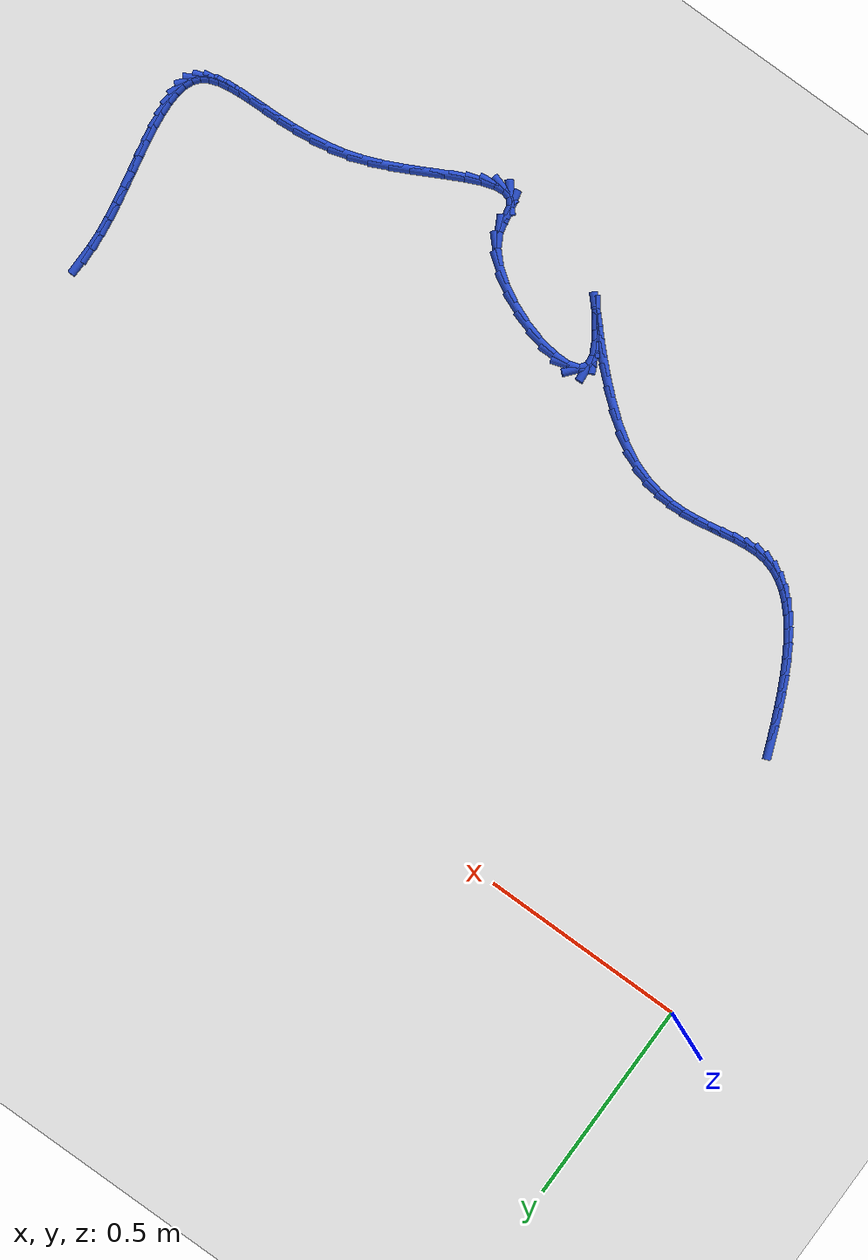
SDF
<sdf version="1.6">
 <world name="default">
  <model name="ground_plane">
   <static>1</static>
   <link name="link">
    <collision name="collision">
     <geometry><plane><normal>0 0 1</normal><size>100 100</size></plane></geometry>
     <surface><friction><ode><mu>100</mu><mu2>50</mu2></ode></friction></surface>
    </collision>
    <visual name="visual">
     <cast_shadows>0</cast_shadows>
     <geometry><plane><normal>0 0 1</normal><size>100 100</size></plane></geometry>
     <material>
      <script><uri>file://media/materials/scripts/gazebo.material</uri><name>Gazebo/WhiteGlow</name></script>
     </material>
    </visual>
   </link>
  </model>
  <model name="line">
   <link name="link_154">
    <pose>2.082928090604853 -0.6021413350175272 0.01 0 1.57 1.5504286555542877</pose>
    <collision name="collision">
     <geometry><cylinder><radius>0.01</radius><length>0.08</length></cylinder></geometry>
    </collision>
    <visual name="visual">
     <material>
      <script><name>Gazebo/Blue</name><uri>file://media/materials/scripts/gazebo.material</uri></script>
     </material>
     <geometry><cylinder><radius>0.01</radius><length>0.08</length></cylinder></geometry>
    </visual>
   </link>
   <link name="link_155">
    <pose>2.0822138356286595 -0.6372045583661057 0.01 0 1.57 -1.516428420142381</pose>
    <collision name="collision">
     <geometry><cylinder><radius>0.01</radius><length>0.08</length></cylinder></geometry>
    </collision>
    <visual name="visual">
     <material>
      <script><name>Gazebo/Blue</name><uri>file://media/materials/scripts/gazebo.material</uri></script>
     </material>
     <geometry><cylinder><radius>0.01</radius><length>0.08</length></cylinder></geometry>
    </visual>
   </link>
   <link name="link_156">
    <pose>2.084219078705596 -0.6740510559667606 0.01 0 1.57 -1.461875645643256</pose>
    <collision name="collision">
     <geometry><cylinder><radius>0.01</radius><length>0.08</length></cylinder></geometry>
    </collision>
    <visual name="visual">
     <material>
      <script><name>Gazebo/Blue</name><uri>file://media/materials/scripts/gazebo.material</uri></script>
     </material>
     <geometry><cylinder><radius>0.01</radius><length>0.08</length></cylinder></geometry>
    </visual>
   </link>
   <link name="link_157">
    <pose>2.0883899429834174 -0.7121921802456141 0.01 0 1.57 -1.423399725698962</pose>
    <collision name="collision">
     <geometry><cylinder><radius>0.01</radius><length>0.08</length></cylinder></geometry>
    </collision>
    <visual name="visual">
     <material>
      <script><name>Gazebo/Blue</name><uri>file://media/materials/scripts/gazebo.material</uri></script>
     </material>
     <geometry><cylinder><radius>0.01</radius><length>0.08</length></cylinder></geometry>
    </visual>
   </link>
   <link name="link_158">
    <pose>2.094172551609881 -0.7511392836287923 0.01 0 1.57 -1.3983118769853247</pose>
    <collision name="collision">
     <geometry><cylinder><radius>0.01</radius><length>0.08</length></cylinder></geometry>
    </collision>
    <visual name="visual">
     <material>
      <script><name>Gazebo/Blue</name><uri>file://media/materials/scripts/gazebo.material</uri></script>
     </material>
     <geometry><cylinder><radius>0.01</radius><length>0.08</length></cylinder></geometry>
    </visual>
   </link>
   <link name="link_159">
    <pose>2.1010130277327432 -0.7904037185424192 0.01 0 1.57 -1.385089916106103</pose>
    <collision name="collision">
     <geometry><cylinder><radius>0.01</radius><length>0.08</length></cylinder></geometry>
    </collision>
    <visual name="visual">
     <material>
      <script><name>Gazebo/Blue</name><uri>file://media/materials/scripts/gazebo.material</uri></script>
     </material>
     <geometry><cylinder><radius>0.01</radius><length>0.08</length></cylinder></geometry>
    </visual>
   </link>
   <link name="link_160">
    <pose>2.108357494499759 -0.8294968374126194 0.01 0 1.57 -1.3832282303199088</pose>
    <collision name="collision">
     <geometry><cylinder><radius>0.01</radius><length>0.08</length></cylinder></geometry>
    </collision>
    <visual name="visual">
     <material>
      <script><name>Gazebo/Blue</name><uri>file://media/materials/scripts/gazebo.material</uri></script>
     </material>
     <geometry><cylinder><radius>0.01</radius><length>0.08</length></cylinder></geometry>
    </visual>
   </link>
   <link name="link_161">
    <pose>2.1156520750586862 -0.8679299926655174 0.01 0 1.57 -1.3932334228141947</pose>
    <collision name="collision">
     <geometry><cylinder><radius>0.01</radius><length>0.08</length></cylinder></geometry>
    </collision>
    <visual name="visual">
     <material>
      <script><name>Gazebo/Blue</name><uri>file://media/materials/scripts/gazebo.material</uri></script>
     </material>
     <geometry><cylinder><radius>0.01</radius><length>0.08</length></cylinder></geometry>
    </visual>
   </link>
   <link name="link_162">
    <pose>2.12234289255728 -0.9052145367272377 0.01 0 1.57 -1.4168050320053365</pose>
    <collision name="collision">
     <geometry><cylinder><radius>0.01</radius><length>0.08</length></cylinder></geometry>
    </collision>
    <visual name="visual">
     <material>
      <script><name>Gazebo/Blue</name><uri>file://media/materials/scripts/gazebo.material</uri></script>
     </material>
     <geometry><cylinder><radius>0.01</radius><length>0.08</length></cylinder></geometry>
    </visual>
   </link>
   <link name="link_163">
    <pose>2.1278760701432966 -0.9408618220239048 0.01 0 1.57 -1.4572797739764503</pose>
    <collision name="collision">
     <geometry><cylinder><radius>0.01</radius><length>0.08</length></cylinder></geometry>
    </collision>
    <visual name="visual">
     <material>
      <script><name>Gazebo/Blue</name><uri>file://media/materials/scripts/gazebo.material</uri></script>
     </material>
     <geometry><cylinder><radius>0.01</radius><length>0.08</length></cylinder></geometry>
    </visual>
   </link>
   <link name="link_164">
    <pose>2.131697730964493 -0.9743832009816433 0.01 0 1.57 -1.5204853062887407</pose>
    <collision name="collision">
     <geometry><cylinder><radius>0.01</radius><length>0.08</length></cylinder></geometry>
    </collision>
    <visual name="visual">
     <material>
      <script><name>Gazebo/Blue</name><uri>file://media/materials/scripts/gazebo.material</uri></script>
     </material>
     <geometry><cylinder><radius>0.01</radius><length>0.08</length></cylinder></geometry>
    </visual>
   </link>
   <link name="link_165">
    <pose>2.133253998168624 -1.0052900260265785 0.01 0 1.57 1.525401682552012</pose>
    <collision name="collision">
     <geometry><cylinder><radius>0.01</radius><length>0.08</length></cylinder></geometry>
    </collision>
    <visual name="visual">
     <material>
      <script><name>Gazebo/Blue</name><uri>file://media/materials/scripts/gazebo.material</uri></script>
     </material>
     <geometry><cylinder><radius>0.01</radius><length>0.08</length></cylinder></geometry>
    </visual>
   </link>
   <link name="link_166">
    <pose>2.1319909949034472 -1.0330936495848329 0.01 0 1.57 1.3816031477288833</pose>
    <collision name="collision">
     <geometry><cylinder><radius>0.01</radius><length>0.08</length></cylinder></geometry>
    </collision>
    <visual name="visual">
     <material>
      <script><name>Gazebo/Blue</name><uri>file://media/materials/scripts/gazebo.material</uri></script>
     </material>
     <geometry><cylinder><radius>0.01</radius><length>0.08</length></cylinder></geometry>
    </visual>
   </link>
   <link name="link_167">
    <pose>2.1273548443167183 -1.057305424082532 0.01 0 1.57 1.168615141969096</pose>
    <collision name="collision">
     <geometry><cylinder><radius>0.01</radius><length>0.08</length></cylinder></geometry>
    </collision>
    <visual name="visual">
     <material>
      <script><name>Gazebo/Blue</name><uri>file://media/materials/scripts/gazebo.material</uri></script>
     </material>
     <geometry><cylinder><radius>0.01</radius><length>0.08</length></cylinder></geometry>
    </visual>
   </link>
   <link name="link_168">
    <pose>2.118791669556193 -1.0774367019458002 0.01 0 1.57 0.8751241545529416</pose>
    <collision name="collision">
     <geometry><cylinder><radius>0.01</radius><length>0.08</length></cylinder></geometry>
    </collision>
    <visual name="visual">
     <material>
      <script><name>Gazebo/Blue</name><uri>file://media/materials/scripts/gazebo.material</uri></script>
     </material>
     <geometry><cylinder><radius>0.01</radius><length>0.08</length></cylinder></geometry>
    </visual>
   </link>
   <link name="link_169">
    <pose>2.1057711824734993 -1.0930316497828898 0.01 0 1.57 0.5695023985253662</pose>
    <collision name="collision">
     <geometry><cylinder><radius>0.01</radius><length>0.08</length></cylinder></geometry>
    </collision>
    <visual name="visual">
     <material>
      <script><name>Gazebo/Blue</name><uri>file://media/materials/scripts/gazebo.material</uri></script>
     </material>
     <geometry><cylinder><radius>0.01</radius><length>0.08</length></cylinder></geometry>
    </visual>
   </link>
   <link name="link_170">
    <pose>2.088219534564062 -1.1042693861555073 0.01 0 1.57 0.3376662476113172</pose>
    <collision name="collision">
     <geometry><cylinder><radius>0.01</radius><length>0.08</length></cylinder></geometry>
    </collision>
    <visual name="visual">
     <material>
      <script><name>Gazebo/Blue</name><uri>file://media/materials/scripts/gazebo.material</uri></script>
     </material>
     <geometry><cylinder><radius>0.01</radius><length>0.08</length></cylinder></geometry>
    </visual>
   </link>
   <link name="link_171">
    <pose>2.0664760609011297 -1.1119038081824713 0.01 0 1.57 0.18569910430754963</pose>
    <collision name="collision">
     <geometry><cylinder><radius>0.01</radius><length>0.08</length></cylinder></geometry>
    </collision>
    <visual name="visual">
     <material>
      <script><name>Gazebo/Blue</name><uri>file://media/materials/scripts/gazebo.material</uri></script>
     </material>
     <geometry><cylinder><radius>0.01</radius><length>0.08</length></cylinder></geometry>
    </visual>
   </link>
   <link name="link_172">
    <pose>2.04089500715565 -1.1167095550747197 0.01 0 1.57 0.09439500773398966</pose>
    <collision name="collision">
     <geometry><cylinder><radius>0.01</radius><length>0.08</length></cylinder></geometry>
    </collision>
    <visual name="visual">
     <material>
      <script><name>Gazebo/Blue</name><uri>file://media/materials/scripts/gazebo.material</uri></script>
     </material>
     <geometry><cylinder><radius>0.01</radius><length>0.08</length></cylinder></geometry>
    </visual>
   </link>
   <link name="link_173">
    <pose>2.0118306189985766 -1.1194612660431915 0.01 0 1.57 0.04570146556740868</pose>
    <collision name="collision">
     <geometry><cylinder><radius>0.01</radius><length>0.08</length></cylinder></geometry>
    </collision>
    <visual name="visual">
     <material>
      <script><name>Gazebo/Blue</name><uri>file://media/materials/scripts/gazebo.material</uri></script>
     </material>
     <geometry><cylinder><radius>0.01</radius><length>0.08</length></cylinder></geometry>
    </visual>
   </link>
   <link name="link_174">
    <pose>1.9796371421008576 -1.1209335802988252 0.01 0 1.57 0.027662465531599463</pose>
    <collision name="collision">
     <geometry><cylinder><radius>0.01</radius><length>0.08</length></cylinder></geometry>
    </collision>
    <visual name="visual">
     <material>
      <script><name>Gazebo/Blue</name><uri>file://media/materials/scripts/gazebo.material</uri></script>
     </material>
     <geometry><cylinder><radius>0.01</radius><length>0.08</length></cylinder></geometry>
    </visual>
   </link>
   <link name="link_175">
    <pose>1.944668822133443 -1.1219011370525587 0.01 0 1.57 0.03308432092568549</pose>
    <collision name="collision">
     <geometry><cylinder><radius>0.01</radius><length>0.08</length></cylinder></geometry>
    </collision>
    <visual name="visual">
     <material>
      <script><name>Gazebo/Blue</name><uri>file://media/materials/scripts/gazebo.material</uri></script>
     </material>
     <geometry><cylinder><radius>0.01</radius><length>0.08</length></cylinder></geometry>
    </visual>
   </link>
   <link name="link_176">
    <pose>1.9072799047672848 -1.1231385755153316 0.01 0 1.57 0.05777225927781681</pose>
    <collision name="collision">
     <geometry><cylinder><radius>0.01</radius><length>0.08</length></cylinder></geometry>
    </collision>
    <visual name="visual">
     <material>
      <script><name>Gazebo/Blue</name><uri>file://media/materials/scripts/gazebo.material</uri></script>
     </material>
     <geometry><cylinder><radius>0.01</radius><length>0.08</length></cylinder></geometry>
    </visual>
   </link>
   <link name="link_177">
    <pose>1.8678246356733315 -1.1254205348980815 0.01 0 1.57 0.09929301649754561</pose>
    <collision name="collision">
     <geometry><cylinder><radius>0.01</radius><length>0.08</length></cylinder></geometry>
    </collision>
    <visual name="visual">
     <material>
      <script><name>Gazebo/Blue</name><uri>file://media/materials/scripts/gazebo.material</uri></script>
     </material>
     <geometry><cylinder><radius>0.01</radius><length>0.08</length></cylinder></geometry>
    </visual>
   </link>
   <link name="link_178">
    <pose>1.8266572605225333 -1.129521654411747 0.01 0 1.57 0.15615233657700472</pose>
    <collision name="collision">
     <geometry><cylinder><radius>0.01</radius><length>0.08</length></cylinder></geometry>
    </collision>
    <visual name="visual">
     <material>
      <script><name>Gazebo/Blue</name><uri>file://media/materials/scripts/gazebo.material</uri></script>
     </material>
     <geometry><cylinder><radius>0.01</radius><length>0.08</length></cylinder></geometry>
    </visual>
   </link>
   <link name="link_179">
    <pose>1.7841320249858417 -1.1362165732672669 0.01 0 1.57 0.227196615899241</pose>
    <collision name="collision">
     <geometry><cylinder><radius>0.01</radius><length>0.08</length></cylinder></geometry>
    </collision>
    <visual name="visual">
     <material>
      <script><name>Gazebo/Blue</name><uri>file://media/materials/scripts/gazebo.material</uri></script>
     </material>
     <geometry><cylinder><radius>0.01</radius><length>0.08</length></cylinder></geometry>
    </visual>
   </link>
   <link name="link_180">
    <pose>1.7406031747342063 -1.14627993067558 0.01 0 1.57 0.3109002592883623</pose>
    <collision name="collision">
     <geometry><cylinder><radius>0.01</radius><length>0.08</length></cylinder></geometry>
    </collision>
    <visual name="visual">
     <material>
      <script><name>Gazebo/Blue</name><uri>file://media/materials/scripts/gazebo.material</uri></script>
     </material>
     <geometry><cylinder><radius>0.01</radius><length>0.08</length></cylinder></geometry>
    </visual>
   </link>
   <link name="link_181">
    <pose>1.6964268444507111 -1.1604746879553467 0.01 0 1.57 0.3905158080435753</pose>
    <collision name="collision">
     <geometry><cylinder><radius>0.01</radius><length>0.08</length></cylinder></geometry>
    </collision>
    <visual name="visual">
     <material>
      <script><name>Gazebo/Blue</name><uri>file://media/materials/scripts/gazebo.material</uri></script>
     </material>
     <geometry><cylinder><radius>0.01</radius><length>0.08</length></cylinder></geometry>
    </visual>
   </link>
   <link name="link_182">
    <pose>1.652094974016625 -1.1787242573057144 0.01 0 1.57 0.44435136987360924</pose>
    <collision name="collision">
     <geometry><cylinder><radius>0.01</radius><length>0.08</length></cylinder></geometry>
    </collision>
    <visual name="visual">
     <material>
      <script><name>Gazebo/Blue</name><uri>file://media/materials/scripts/gazebo.material</uri></script>
     </material>
     <geometry><cylinder><radius>0.01</radius><length>0.08</length></cylinder></geometry>
    </visual>
   </link>
   <link name="link_183">
    <pose>1.6083240481078698 -1.1995639127163011 0.01 0 1.57 0.47485948924599763</pose>
    <collision name="collision">
     <geometry><cylinder><radius>0.01</radius><length>0.08</length></cylinder></geometry>
    </collision>
    <visual name="visual">
     <material>
      <script><name>Gazebo/Blue</name><uri>file://media/materials/scripts/gazebo.material</uri></script>
     </material>
     <geometry><cylinder><radius>0.01</radius><length>0.08</length></cylinder></geometry>
    </visual>
   </link>
   <link name="link_184">
    <pose>1.5658516075515447 -1.2213987588355144 0.01 0 1.57 0.48356377862109406</pose>
    <collision name="collision">
     <geometry><cylinder><radius>0.01</radius><length>0.08</length></cylinder></geometry>
    </collision>
    <visual name="visual">
     <material>
      <script><name>Gazebo/Blue</name><uri>file://media/materials/scripts/gazebo.material</uri></script>
     </material>
     <geometry><cylinder><radius>0.01</radius><length>0.08</length></cylinder></geometry>
    </visual>
   </link>
   <link name="link_185">
    <pose>1.5254151931747495 -1.2426339003117621 0.01 0 1.57 0.4680796269715781</pose>
    <collision name="collision">
     <geometry><cylinder><radius>0.01</radius><length>0.08</length></cylinder></geometry>
    </collision>
    <visual name="visual">
     <material>
      <script><name>Gazebo/Blue</name><uri>file://media/materials/scripts/gazebo.material</uri></script>
     </material>
     <geometry><cylinder><radius>0.01</radius><length>0.08</length></cylinder></geometry>
    </visual>
   </link>
   <link name="link_186">
    <pose>1.4877523458045823 -1.2616744417934511 0.01 0 1.57 0.4199955288477288</pose>
    <collision name="collision">
     <geometry><cylinder><radius>0.01</radius><length>0.08</length></cylinder></geometry>
    </collision>
    <visual name="visual">
     <material>
      <script><name>Gazebo/Blue</name><uri>file://media/materials/scripts/gazebo.material</uri></script>
     </material>
     <geometry><cylinder><radius>0.01</radius><length>0.08</length></cylinder></geometry>
    </visual>
   </link>
   <link name="link_187">
    <pose>1.4536006062681432 -1.276925487928989 0.01 0 1.57 0.3187064087704359</pose>
    <collision name="collision">
     <geometry><cylinder><radius>0.01</radius><length>0.08</length></cylinder></geometry>
    </collision>
    <visual name="visual">
     <material>
      <script><name>Gazebo/Blue</name><uri>file://media/materials/scripts/gazebo.material</uri></script>
     </material>
     <geometry><cylinder><radius>0.01</radius><length>0.08</length></cylinder></geometry>
    </visual>
   </link>
   <link name="link_188">
    <pose>1.4236975153925309 -1.286792143366784 0.01 0 1.57 0.11536540839708309</pose>
    <collision name="collision">
     <geometry><cylinder><radius>0.01</radius><length>0.08</length></cylinder></geometry>
    </collision>
    <visual name="visual">
     <material>
      <script><name>Gazebo/Blue</name><uri>file://media/materials/scripts/gazebo.material</uri></script>
     </material>
     <geometry><cylinder><radius>0.01</radius><length>0.08</length></cylinder></geometry>
    </visual>
   </link>
   <link name="link_189">
    <pose>1.398780614004846 -1.289679512755243 0.01 0 1.57 -0.2880528850164278</pose>
    <collision name="collision">
     <geometry><cylinder><radius>0.01</radius><length>0.08</length></cylinder></geometry>
    </collision>
    <visual name="visual">
     <material>
      <script><name>Gazebo/Blue</name><uri>file://media/materials/scripts/gazebo.material</uri></script>
     </material>
     <geometry><cylinder><radius>0.01</radius><length>0.08</length></cylinder></geometry>
    </visual>
   </link>
   <link name="link_190">
    <pose>1.3795874429321864 -1.2839927007427732 0.01 0 1.57 -0.8942433141331325</pose>
    <collision name="collision">
     <geometry><cylinder><radius>0.01</radius><length>0.08</length></cylinder></geometry>
    </collision>
    <visual name="visual">
     <material>
      <script><name>Gazebo/Blue</name><uri>file://media/materials/scripts/gazebo.material</uri></script>
     </material>
     <geometry><cylinder><radius>0.01</radius><length>0.08</length></cylinder></geometry>
    </visual>
   </link>
   <link name="link_191">
    <pose>1.3668555430016525 -1.2681368119777827 0.01 0 1.57 -1.3584825285052593</pose>
    <collision name="collision">
     <geometry><cylinder><radius>0.01</radius><length>0.08</length></cylinder></geometry>
    </collision>
    <visual name="visual">
     <material>
      <script><name>Gazebo/Blue</name><uri>file://media/materials/scripts/gazebo.material</uri></script>
     </material>
     <geometry><cylinder><radius>0.01</radius><length>0.08</length></cylinder></geometry>
    </visual>
   </link>
   <link name="link_192">
    <pose>1.3609588044032312 -1.2407816965226794 0.01 0 1.57 -1.3870834307999464</pose>
    <collision name="collision">
     <geometry><cylinder><radius>0.01</radius><length>0.08</length></cylinder></geometry>
    </collision>
    <visual name="visual">
     <material>
      <script><name>Gazebo/Blue</name><uri>file://media/materials/scripts/gazebo.material</uri></script>
     </material>
     <geometry><cylinder><radius>0.01</radius><length>0.08</length></cylinder></geometry>
    </visual>
   </link>
   <link name="link_193">
    <pose>1.354538252835942 -1.2062269290800545 0.01 0 1.57 -1.0735182442326028</pose>
    <collision name="collision">
     <geometry><cylinder><radius>0.01</radius><length>0.08</length></cylinder></geometry>
    </collision>
    <visual name="visual">
     <material>
      <script><name>Gazebo/Blue</name><uri>file://media/materials/scripts/gazebo.material</uri></script>
     </material>
     <geometry><cylinder><radius>0.01</radius><length>0.08</length></cylinder></geometry>
    </visual>
   </link>
   <link name="link_194">
    <pose>1.336201361120068 -1.172443236795673 0.01 0 1.57 -0.8025758413850526</pose>
    <collision name="collision">
     <geometry><cylinder><radius>0.01</radius><length>0.08</length></cylinder></geometry>
    </collision>
    <visual name="visual">
     <material>
      <script><name>Gazebo/Blue</name><uri>file://media/materials/scripts/gazebo.material</uri></script>
     </material>
     <geometry><cylinder><radius>0.01</radius><length>0.08</length></cylinder></geometry>
    </visual>
   </link>
   <link name="link_195">
    <pose>1.3062895606748204 -1.1414857403143759 0.01 0 1.57 -0.6198478195379366</pose>
    <collision name="collision">
     <geometry><cylinder><radius>0.01</radius><length>0.08</length></cylinder></geometry>
    </collision>
    <visual name="visual">
     <material>
      <script><name>Gazebo/Blue</name><uri>file://media/materials/scripts/gazebo.material</uri></script>
     </material>
     <geometry><cylinder><radius>0.01</radius><length>0.08</length></cylinder></geometry>
    </visual>
   </link>
   <link name="link_196">
    <pose>1.2678322888826707 -1.1140395818889357 0.01 0 1.57 -0.48636074165551135</pose>
    <collision name="collision">
     <geometry><cylinder><radius>0.01</radius><length>0.08</length></cylinder></geometry>
    </collision>
    <visual name="visual">
     <material>
      <script><name>Gazebo/Blue</name><uri>file://media/materials/scripts/gazebo.material</uri></script>
     </material>
     <geometry><cylinder><radius>0.01</radius><length>0.08</length></cylinder></geometry>
    </visual>
   </link>
   <link name="link_197">
    <pose>1.2238589831260887 -1.0907899037721238 0.01 0 1.57 -0.37649381886785915</pose>
    <collision name="collision">
     <geometry><cylinder><radius>0.01</radius><length>0.08</length></cylinder></geometry>
    </collision>
    <visual name="visual">
     <material>
      <script><name>Gazebo/Blue</name><uri>file://media/materials/scripts/gazebo.material</uri></script>
     </material>
     <geometry><cylinder><radius>0.01</radius><length>0.08</length></cylinder></geometry>
    </visual>
   </link>
   <link name="link_198">
    <pose>1.1773990807875487 -1.0724218482167154 0.01 0 1.57 -0.2718877965980865</pose>
    <collision name="collision">
     <geometry><cylinder><radius>0.01</radius><length>0.08</length></cylinder></geometry>
    </collision>
    <visual name="visual">
     <material>
      <script><name>Gazebo/Blue</name><uri>file://media/materials/scripts/gazebo.material</uri></script>
     </material>
     <geometry><cylinder><radius>0.01</radius><length>0.08</length></cylinder></geometry>
    </visual>
   </link>
   <link name="link_199">
    <pose>1.1314820192495203 -1.0596205574754816 0.01 0 1.57 -0.15345208966260773</pose>
    <collision name="collision">
     <geometry><cylinder><radius>0.01</radius><length>0.08</length></cylinder></geometry>
    </collision>
    <visual name="visual">
     <material>
      <script><name>Gazebo/Blue</name><uri>file://media/materials/scripts/gazebo.material</uri></script>
     </material>
     <geometry><cylinder><radius>0.01</radius><length>0.08</length></cylinder></geometry>
    </visual>
   </link>
   <link name="link_200">
    <pose>1.0891372358944746 -1.0530711738011953 0.01 0 1.57 0.010845472133712498</pose>
    <collision name="collision">
     <geometry><cylinder><radius>0.01</radius><length>0.08</length></cylinder></geometry>
    </collision>
    <visual name="visual">
     <material>
      <script><name>Gazebo/Blue</name><uri>file://media/materials/scripts/gazebo.material</uri></script>
     </material>
     <geometry><cylinder><radius>0.01</radius><length>0.08</length></cylinder></geometry>
    </visual>
   </link>
   <link name="link_201">
    <pose>1.053394168104883 -1.0534588394466289 0.01 0 1.57 0.2976388499211965</pose>
    <collision name="collision">
     <geometry><cylinder><radius>0.01</radius><length>0.08</length></cylinder></geometry>
    </collision>
    <visual name="visual">
     <material>
      <script><name>Gazebo/Blue</name><uri>file://media/materials/scripts/gazebo.material</uri></script>
     </material>
     <geometry><cylinder><radius>0.01</radius><length>0.08</length></cylinder></geometry>
    </visual>
   </link>
   <link name="link_202">
    <pose>1.0272822532632166 -1.0614686966645552 0.01 0 1.57 0.8813741144533624</pose>
    <collision name="collision">
     <geometry><cylinder><radius>0.01</radius><length>0.08</length></cylinder></geometry>
    </collision>
    <visual name="visual">
     <material>
      <script><name>Gazebo/Blue</name><uri>file://media/materials/scripts/gazebo.material</uri></script>
     </material>
     <geometry><cylinder><radius>0.01</radius><length>0.08</length></cylinder></geometry>
    </visual>
   </link>
   <link name="link_203">
    <pose>1.0138309287519465 -1.0777858877077469 0.01 0 1.57 -1.4846442460730476</pose>
    <collision name="collision">
     <geometry><cylinder><radius>0.01</radius><length>0.08</length></cylinder></geometry>
    </collision>
    <visual name="visual">
     <material>
      <script><name>Gazebo/Blue</name><uri>file://media/materials/scripts/gazebo.material</uri></script>
     </material>
     <geometry><cylinder><radius>0.01</radius><length>0.08</length></cylinder></geometry>
    </visual>
   </link>
   <link name="link_204">
    <pose>1.016013461374485 -1.1030566671615276 0.01 0 1.57 -1.0969655199482262</pose>
    <collision name="collision">
     <geometry><cylinder><radius>0.01</radius><length>0.08</length></cylinder></geometry>
    </collision>
    <visual name="visual">
     <material>
      <script><name>Gazebo/Blue</name><uri>file://media/materials/scripts/gazebo.material</uri></script>
     </material>
     <geometry><cylinder><radius>0.01</radius><length>0.08</length></cylinder></geometry>
    </visual>
   </link>
   <link name="link_205">
    <pose>1.032294192642925 -1.1348056983757238 0.01 0 1.57 -0.9638427214847565</pose>
    <collision name="collision">
     <geometry><cylinder><radius>0.01</radius><length>0.08</length></cylinder></geometry>
    </collision>
    <visual name="visual">
     <material>
      <script><name>Gazebo/Blue</name><uri>file://media/materials/scripts/gazebo.material</uri></script>
     </material>
     <geometry><cylinder><radius>0.01</radius><length>0.08</length></cylinder></geometry>
    </visual>
   </link>
   <link name="link_206">
    <pose>1.0534008304393754 -1.1652014664157075 0.01 0 1.57 -0.9152524174523355</pose>
    <collision name="collision">
     <geometry><cylinder><radius>0.01</radius><length>0.08</length></cylinder></geometry>
    </collision>
    <visual name="visual">
     <material>
      <script><name>Gazebo/Blue</name><uri>file://media/materials/scripts/gazebo.material</uri></script>
     </material>
     <geometry><cylinder><radius>0.01</radius><length>0.08</length></cylinder></geometry>
    </visual>
   </link>
   <link name="link_207">
    <pose>1.069324360498179 -1.1859085554607411 0.01 0 1.57 -0.9545470810833316</pose>
    <collision name="collision">
     <geometry><cylinder><radius>0.01</radius><length>0.08</length></cylinder></geometry>
    </collision>
    <visual name="visual">
     <material>
      <script><name>Gazebo/Blue</name><uri>file://media/materials/scripts/gazebo.material</uri></script>
     </material>
     <geometry><cylinder><radius>0.01</radius><length>0.08</length></cylinder></geometry>
    </visual>
   </link>
   <link name="link_208">
    <pose>1.0735688781955792 -1.1919014216639303 0.01 0 1.57 -0.801977412194886</pose>
    <collision name="collision">
     <geometry><cylinder><radius>0.01</radius><length>0.08</length></cylinder></geometry>
    </collision>
    <visual name="visual">
     <material>
      <script><name>Gazebo/Blue</name><uri>file://media/materials/scripts/gazebo.material</uri></script>
     </material>
     <geometry><cylinder><radius>0.01</radius><length>0.08</length></cylinder></geometry>
    </visual>
   </link>
   <link name="link_209">
    <pose>1.0667721209846068 -1.1848754733797513 0.01 0 1.57 -0.8207856232724994</pose>
    <collision name="collision">
     <geometry><cylinder><radius>0.01</radius><length>0.08</length></cylinder></geometry>
    </collision>
    <visual name="visual">
     <material>
      <script><name>Gazebo/Blue</name><uri>file://media/materials/scripts/gazebo.material</uri></script>
     </material>
     <geometry><cylinder><radius>0.01</radius><length>0.08</length></cylinder></geometry>
    </visual>
   </link>
   <link name="link_210">
    <pose>1.0504365247222303 -1.167340793511658 0.01 0 1.57 -0.8086646076327783</pose>
    <collision name="collision">
     <geometry><cylinder><radius>0.01</radius><length>0.08</length></cylinder></geometry>
    </collision>
    <visual name="visual">
     <material>
      <script><name>Gazebo/Blue</name><uri>file://media/materials/scripts/gazebo.material</uri></script>
     </material>
     <geometry><cylinder><radius>0.01</radius><length>0.08</length></cylinder></geometry>
    </visual>
   </link>
   <link name="link_211">
    <pose>1.0260645252654186 -1.1418074649631043 0.01 0 1.57 -0.7872701382044662</pose>
    <collision name="collision">
     <geometry><cylinder><radius>0.01</radius><length>0.08</length></cylinder></geometry>
    </collision>
    <visual name="visual">
     <material>
      <script><name>Gazebo/Blue</name><uri>file://media/materials/scripts/gazebo.material</uri></script>
     </material>
     <geometry><cylinder><radius>0.01</radius><length>0.08</length></cylinder></geometry>
    </visual>
   </link>
   <link name="link_212">
    <pose>0.9951585584711407 -1.110785570637543 0.01 0 1.57 -0.7577075032689471</pose>
    <collision name="collision">
     <geometry><cylinder><radius>0.01</radius><length>0.08</length></cylinder></geometry>
    </collision>
    <visual name="visual">
     <material>
      <script><name>Gazebo/Blue</name><uri>file://media/materials/scripts/gazebo.material</uri></script>
     </material>
     <geometry><cylinder><radius>0.01</radius><length>0.08</length></cylinder></geometry>
    </visual>
   </link>
   <link name="link_213">
    <pose>0.9592210601963642 -1.0767851934384267 0.01 0 1.57 -0.7179037399412649</pose>
    <collision name="collision">
     <geometry><cylinder><radius>0.01</radius><length>0.08</length></cylinder></geometry>
    </collision>
    <visual name="visual">
     <material>
      <script><name>Gazebo/Blue</name><uri>file://media/materials/scripts/gazebo.material</uri></script>
     </material>
     <geometry><cylinder><radius>0.01</radius><length>0.08</length></cylinder></geometry>
    </visual>
   </link>
   <link name="link_214">
    <pose>0.91975446629806 -1.0423164162692113 0.01 0 1.57 -0.6633599625310995</pose>
    <collision name="collision">
     <geometry><cylinder><radius>0.01</radius><length>0.08</length></cylinder></geometry>
    </collision>
    <visual name="visual">
     <material>
      <script><name>Gazebo/Blue</name><uri>file://media/materials/scripts/gazebo.material</uri></script>
     </material>
     <geometry><cylinder><radius>0.01</radius><length>0.08</length></cylinder></geometry>
    </visual>
   </link>
   <link name="link_215">
    <pose>0.878261212633196 -1.0098893220333494 0.01 0 1.57 -0.5857530858799608</pose>
    <collision name="collision">
     <geometry><cylinder><radius>0.01</radius><length>0.08</length></cylinder></geometry>
    </collision>
    <visual name="visual">
     <material>
      <script><name>Gazebo/Blue</name><uri>file://media/materials/scripts/gazebo.material</uri></script>
     </material>
     <geometry><cylinder><radius>0.01</radius><length>0.08</length></cylinder></geometry>
    </visual>
   </link>
   <link name="link_216">
    <pose>0.8362437350587412 -0.9820139936342945 0.01 0 1.57 -0.47271989021819116</pose>
    <collision name="collision">
     <geometry><cylinder><radius>0.01</radius><length>0.08</length></cylinder></geometry>
    </collision>
    <visual name="visual">
     <material>
      <script><name>Gazebo/Blue</name><uri>file://media/materials/scripts/gazebo.material</uri></script>
     </material>
     <geometry><cylinder><radius>0.01</radius><length>0.08</length></cylinder></geometry>
    </visual>
   </link>
   <link name="link_217">
    <pose>0.7951103577379556 -0.9609786994990213 0.01 0 1.57 -0.33965071269553126</pose>
    <collision name="collision">
     <geometry><cylinder><radius>0.01</radius><length>0.08</length></cylinder></geometry>
    </collision>
    <visual name="visual">
     <material>
      <script><name>Gazebo/Blue</name><uri>file://media/materials/scripts/gazebo.material</uri></script>
     </material>
     <geometry><cylinder><radius>0.01</radius><length>0.08</length></cylinder></geometry>
    </visual>
   </link>
   <link name="link_218">
    <pose>0.7553624183297637 -0.9469340062588463 0.01 0 1.57 -0.20802303289058668</pose>
    <collision name="collision">
     <geometry><cylinder><radius>0.01</radius><length>0.08</length></cylinder></geometry>
    </collision>
    <visual name="visual">
     <material>
      <script><name>Gazebo/Blue</name><uri>file://media/materials/scripts/gazebo.material</uri></script>
     </material>
     <geometry><cylinder><radius>0.01</radius><length>0.08</length></cylinder></geometry>
    </visual>
   </link>
   <link name="link_219">
    <pose>0.7169941935351651 -0.9388353744271 0.01 0 1.57 -0.08654545855773929</pose>
    <collision name="collision">
     <geometry><cylinder><radius>0.01</radius><length>0.08</length></cylinder></geometry>
    </collision>
    <visual name="visual">
     <material>
      <script><name>Gazebo/Blue</name><uri>file://media/materials/scripts/gazebo.material</uri></script>
     </material>
     <geometry><cylinder><radius>0.01</radius><length>0.08</length></cylinder></geometry>
    </visual>
   </link>
   <link name="link_220">
    <pose>0.6799944139085201 -0.9356251926493713 0.01 0 1.57 0.017411584241982657</pose>
    <collision name="collision">
     <geometry><cylinder><radius>0.01</radius><length>0.08</length></cylinder></geometry>
    </collision>
    <visual name="visual">
     <material>
      <script><name>Gazebo/Blue</name><uri>file://media/materials/scripts/gazebo.material</uri></script>
     </material>
     <geometry><cylinder><radius>0.01</radius><length>0.08</length></cylinder></geometry>
    </visual>
   </link>
   <link name="link_221">
    <pose>0.6443518100041918 -0.9362458495712492 0.01 0 1.57 0.09863546753769452</pose>
    <collision name="collision">
     <geometry><cylinder><radius>0.01</radius><length>0.08</length></cylinder></geometry>
    </collision>
    <visual name="visual">
     <material>
      <script><name>Gazebo/Blue</name><uri>file://media/materials/scripts/gazebo.material</uri></script>
     </material>
     <geometry><cylinder><radius>0.01</radius><length>0.08</length></cylinder></geometry>
    </visual>
   </link>
   <link name="link_222">
    <pose>0.6100551123765405 -0.9396397338383227 0.01 0 1.57 0.15378758275287532</pose>
    <collision name="collision">
     <geometry><cylinder><radius>0.01</radius><length>0.08</length></cylinder></geometry>
    </collision>
    <visual name="visual">
     <material>
      <script><name>Gazebo/Blue</name><uri>file://media/materials/scripts/gazebo.material</uri></script>
     </material>
     <geometry><cylinder><radius>0.01</radius><length>0.08</length></cylinder></geometry>
    </visual>
   </link>
   <link name="link_223">
    <pose>0.5770930515799275 -0.9447492340961805 0.01 0 1.57 0.18031285764580715</pose>
    <collision name="collision">
     <geometry><cylinder><radius>0.01</radius><length>0.08</length></cylinder></geometry>
    </collision>
    <visual name="visual">
     <material>
      <script><name>Gazebo/Blue</name><uri>file://media/materials/scripts/gazebo.material</uri></script>
     </material>
     <geometry><cylinder><radius>0.01</radius><length>0.08</length></cylinder></geometry>
    </visual>
   </link>
   <link name="link_224">
    <pose>0.5454543581687139 -0.9505167389904116 0.01 0 1.57 0.17518847767478113</pose>
    <collision name="collision">
     <geometry><cylinder><radius>0.01</radius><length>0.08</length></cylinder></geometry>
    </collision>
    <visual name="visual">
     <material>
      <script><name>Gazebo/Blue</name><uri>file://media/materials/scripts/gazebo.material</uri></script>
     </material>
     <geometry><cylinder><radius>0.01</radius><length>0.08</length></cylinder></geometry>
    </visual>
   </link>
   <link name="link_225">
    <pose>0.5151277626972609 -0.9558846371666049 0.01 0 1.57 0.1339248545391257</pose>
    <collision name="collision">
     <geometry><cylinder><radius>0.01</radius><length>0.08</length></cylinder></geometry>
    </collision>
    <visual name="visual">
     <material>
      <script><name>Gazebo/Blue</name><uri>file://media/materials/scripts/gazebo.material</uri></script>
     </material>
     <geometry><cylinder><radius>0.01</radius><length>0.08</length></cylinder></geometry>
    </visual>
   </link>
   <link name="link_226">
    <pose>0.48610199571992985 -0.9597953172703493 0.01 0 1.57 0.05028351547929926</pose>
    <collision name="collision">
     <geometry><cylinder><radius>0.01</radius><length>0.08</length></cylinder></geometry>
    </collision>
    <visual name="visual">
     <material>
      <script><name>Gazebo/Blue</name><uri>file://media/materials/scripts/gazebo.material</uri></script>
     </material>
     <geometry><cylinder><radius>0.01</radius><length>0.08</length></cylinder></geometry>
    </visual>
   </link>
   <link name="link_227">
    <pose>0.45836578779108184 -0.9611911679472337 0.01 0 1.57 -0.08208127868692551</pose>
    <collision name="collision">
     <geometry><cylinder><radius>0.01</radius><length>0.08</length></cylinder></geometry>
    </collision>
    <visual name="visual">
     <material>
      <script><name>Gazebo/Blue</name><uri>file://media/materials/scripts/gazebo.material</uri></script>
     </material>
     <geometry><cylinder><radius>0.01</radius><length>0.08</length></cylinder></geometry>
    </visual>
   </link>
   <link name="link_228">
    <pose>0.43190786946507825 -0.9590145778428472 0.01 0 1.57 -0.2574343348628535</pose>
    <collision name="collision">
     <geometry><cylinder><radius>0.01</radius><length>0.08</length></cylinder></geometry>
    </collision>
    <visual name="visual">
     <material>
      <script><name>Gazebo/Blue</name><uri>file://media/materials/scripts/gazebo.material</uri></script>
     </material>
     <geometry><cylinder><radius>0.01</radius><length>0.08</length></cylinder></geometry>
    </visual>
   </link>
   <link name="link_229">
    <pose>0.40671025961670204 -0.9523806474088443 0.01 0 1.57 -0.43159348909257295</pose>
    <collision name="collision">
     <geometry><cylinder><radius>0.01</radius><length>0.08</length></cylinder></geometry>
    </collision>
    <visual name="visual">
     <material>
      <script><name>Gazebo/Blue</name><uri>file://media/materials/scripts/gazebo.material</uri></script>
     </material>
     <geometry><cylinder><radius>0.01</radius><length>0.08</length></cylinder></geometry>
    </visual>
   </link>
   <link name="link_230">
    <pose>0.382718955351616 -0.941331426116303 0.01 0 1.57 -0.5843213785852032</pose>
    <collision name="collision">
     <geometry><cylinder><radius>0.01</radius><length>0.08</length></cylinder></geometry>
    </collision>
    <visual name="visual">
     <material>
      <script><name>Gazebo/Blue</name><uri>file://media/materials/scripts/gazebo.material</uri></script>
     </material>
     <geometry><cylinder><radius>0.01</radius><length>0.08</length></cylinder></geometry>
    </visual>
   </link>
   <link name="link_231">
    <pose>0.3598679206383692 -0.9262186124323845 0.01 0 1.57 -0.7128110160509356</pose>
    <collision name="collision">
     <geometry><cylinder><radius>0.01</radius><length>0.08</length></cylinder></geometry>
    </collision>
    <visual name="visual">
     <material>
      <script><name>Gazebo/Blue</name><uri>file://media/materials/scripts/gazebo.material</uri></script>
     </material>
     <geometry><cylinder><radius>0.01</radius><length>0.08</length></cylinder></geometry>
    </visual>
   </link>
   <link name="link_232">
    <pose>0.33809111099453576 -0.9073941222933979 0.01 0 1.57 -0.8183437864778482</pose>
    <collision name="collision">
     <geometry><cylinder><radius>0.01</radius><length>0.08</length></cylinder></geometry>
    </collision>
    <visual name="visual">
     <material>
      <script><name>Gazebo/Blue</name><uri>file://media/materials/scripts/gazebo.material</uri></script>
     </material>
     <geometry><cylinder><radius>0.01</radius><length>0.08</length></cylinder></geometry>
    </visual>
   </link>
   <link name="link_233">
    <pose>0.31732248193769014 -0.8852098716356528 0.01 0 1.57 -0.904024936247613</pose>
    <collision name="collision">
     <geometry><cylinder><radius>0.01</radius><length>0.08</length></cylinder></geometry>
    </collision>
    <visual name="visual">
     <material>
      <script><name>Gazebo/Blue</name><uri>file://media/materials/scripts/gazebo.material</uri></script>
     </material>
     <geometry><cylinder><radius>0.01</radius><length>0.08</length></cylinder></geometry>
    </visual>
   </link>
   <link name="link_234">
    <pose>0.2974959889854065 -0.8600177763954582 0.01 0 1.57 -0.9732822359244213</pose>
    <collision name="collision">
     <geometry><cylinder><radius>0.01</radius><length>0.08</length></cylinder></geometry>
    </collision>
    <visual name="visual">
     <material>
      <script><name>Gazebo/Blue</name><uri>file://media/materials/scripts/gazebo.material</uri></script>
     </material>
     <geometry><cylinder><radius>0.01</radius><length>0.08</length></cylinder></geometry>
    </visual>
   </link>
   <link name="link_235">
    <pose>0.2785455876552593 -0.8321697525091232 0.01 0 1.57 -1.0291795385088391</pose>
    <collision name="collision">
     <geometry><cylinder><radius>0.01</radius><length>0.08</length></cylinder></geometry>
    </collision>
    <visual name="visual">
     <material>
      <script><name>Gazebo/Blue</name><uri>file://media/materials/scripts/gazebo.material</uri></script>
     </material>
     <geometry><cylinder><radius>0.01</radius><length>0.08</length></cylinder></geometry>
    </visual>
   </link>
   <link name="link_236">
    <pose>0.2604052334648221 -0.802017715912956 0.01 0 1.57 -1.0742143372425397</pose>
    <collision name="collision">
     <geometry><cylinder><radius>0.01</radius><length>0.08</length></cylinder></geometry>
    </collision>
    <visual name="visual">
     <material>
      <script><name>Gazebo/Blue</name><uri>file://media/materials/scripts/gazebo.material</uri></script>
     </material>
     <geometry><cylinder><radius>0.01</radius><length>0.08</length></cylinder></geometry>
    </visual>
   </link>
   <link name="link_237">
    <pose>0.24300888193167033 -0.769913582543268 0.01 0 1.57 -1.1103287494043883</pose>
    <collision name="collision">
     <geometry><cylinder><radius>0.01</radius><length>0.08</length></cylinder></geometry>
    </collision>
    <visual name="visual">
     <material>
      <script><name>Gazebo/Blue</name><uri>file://media/materials/scripts/gazebo.material</uri></script>
     </material>
     <geometry><cylinder><radius>0.01</radius><length>0.08</length></cylinder></geometry>
    </visual>
   </link>
   <link name="link_238">
    <pose>0.22629048857337788 -0.7362092683363675 0.01 0 1.57 -1.138989686399468</pose>
    <collision name="collision">
     <geometry><cylinder><radius>0.01</radius><length>0.08</length></cylinder></geometry>
    </collision>
    <visual name="visual">
     <material>
      <script><name>Gazebo/Blue</name><uri>file://media/materials/scripts/gazebo.material</uri></script>
     </material>
     <geometry><cylinder><radius>0.01</radius><length>0.08</length></cylinder></geometry>
    </visual>
   </link>
   <link name="link_239">
    <pose>0.21018400890751882 -0.7012566892285632 0.01 0 1.57 -1.1612762927183586</pose>
    <collision name="collision">
     <geometry><cylinder><radius>0.01</radius><length>0.08</length></cylinder></geometry>
    </collision>
    <visual name="visual">
     <material>
      <script><name>Gazebo/Blue</name><uri>file://media/materials/scripts/gazebo.material</uri></script>
     </material>
     <geometry><cylinder><radius>0.01</radius><length>0.08</length></cylinder></geometry>
    </visual>
   </link>
   <link name="link_240">
    <pose>0.1946233984516675 -0.6654077611561648 0.01 0 1.57 -1.1779527334622992</pose>
    <collision name="collision">
     <geometry><cylinder><radius>0.01</radius><length>0.08</length></cylinder></geometry>
    </collision>
    <visual name="visual">
     <material>
      <script><name>Gazebo/Blue</name><uri>file://media/materials/scripts/gazebo.material</uri></script>
     </material>
     <geometry><cylinder><radius>0.01</radius><length>0.08</length></cylinder></geometry>
    </visual>
   </link>
   <link name="link_241">
    <pose>0.17954261272339828 -0.6290144000554814 0.01 0 1.57 -1.1895207591552817</pose>
    <collision name="collision">
     <geometry><cylinder><radius>0.01</radius><length>0.08</length></cylinder></geometry>
    </collision>
    <visual name="visual">
     <material>
      <script><name>Gazebo/Blue</name><uri>file://media/materials/scripts/gazebo.material</uri></script>
     </material>
     <geometry><cylinder><radius>0.01</radius><length>0.08</length></cylinder></geometry>
    </visual>
   </link>
  </model>
 </world>
</sdf>
